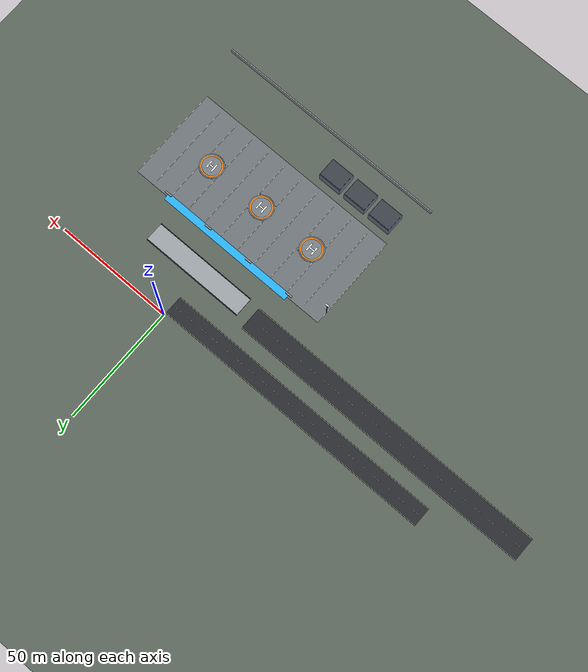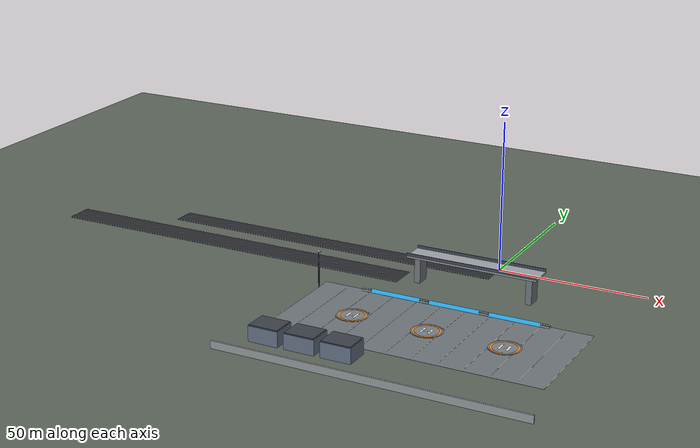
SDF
<sdf version="1.9">
 <world name="autonomous_city">
  <model name="ground">
   <static>true</static>
   <link name="link">
    <collision name="collision">
     <geometry><plane><normal>0 0 1</normal><size>600 600</size></plane></geometry>
     <surface><friction><ode><mu>100</mu><mu2>50</mu2></ode></friction></surface>
    </collision>
    <visual name="visual">
     <geometry><plane><normal>0 0 1</normal><size>600 600</size></plane></geometry>
     <material>
      <ambient>0.36 0.40 0.36 1</ambient>
      <diffuse>0.36 0.40 0.36 1</diffuse>
      <specular>0.15 0.15 0.15 1</specular>
     </material>
    </visual>
   </link>
  </model>
  <model name="ops_apron">
   <static>true</static>
   <pose>0 -55 0 0 0 0.0</pose>
   <link name="link">
    <visual name="slab">
     <pose>0 0 0.015 0 0 0</pose>
     <geometry><box><size>90.000 40.000 0.030</size></box></geometry>
     <material>
      <ambient>0.44 0.46 0.48 1</ambient>
      <diffuse>0.44 0.46 0.48 1</diffuse>
      <specular>0.15 0.15 0.15 1</specular>
     </material>
    </visual>
    <visual name="bay0">
     <pose>-45.00 0 0.035 0 0 0</pose>
     <geometry><box><size>0.200 36.000 0.010</size></box></geometry>
     <material>
      <ambient>0.95 0.95 0.90 1</ambient>
      <diffuse>0.95 0.95 0.90 1</diffuse>
      <specular>0.15 0.15 0.15 1</specular>
     </material>
    </visual>
    <visual name="bay1">
     <pose>-36.82 0 0.035 0 0 0</pose>
     <geometry><box><size>0.200 36.000 0.010</size></box></geometry>
     <material>
      <ambient>0.95 0.95 0.90 1</ambient>
      <diffuse>0.95 0.95 0.90 1</diffuse>
      <specular>0.15 0.15 0.15 1</specular>
     </material>
    </visual>
    <visual name="bay2">
     <pose>-28.64 0 0.035 0 0 0</pose>
     <geometry><box><size>0.200 36.000 0.010</size></box></geometry>
     <material>
      <ambient>0.95 0.95 0.90 1</ambient>
      <diffuse>0.95 0.95 0.90 1</diffuse>
      <specular>0.15 0.15 0.15 1</specular>
     </material>
    </visual>
    <visual name="bay3">
     <pose>-20.45 0 0.035 0 0 0</pose>
     <geometry><box><size>0.200 36.000 0.010</size></box></geometry>
     <material>
      <ambient>0.95 0.95 0.90 1</ambient>
      <diffuse>0.95 0.95 0.90 1</diffuse>
      <specular>0.15 0.15 0.15 1</specular>
     </material>
    </visual>
    <visual name="bay4">
     <pose>-12.27 0 0.035 0 0 0</pose>
     <geometry><box><size>0.200 36.000 0.010</size></box></geometry>
     <material>
      <ambient>0.95 0.95 0.90 1</ambient>
      <diffuse>0.95 0.95 0.90 1</diffuse>
      <specular>0.15 0.15 0.15 1</specular>
     </material>
    </visual>
    <visual name="bay5">
     <pose>-4.09 0 0.035 0 0 0</pose>
     <geometry><box><size>0.200 36.000 0.010</size></box></geometry>
     <material>
      <ambient>0.95 0.95 0.90 1</ambient>
      <diffuse>0.95 0.95 0.90 1</diffuse>
      <specular>0.15 0.15 0.15 1</specular>
     </material>
    </visual>
    <visual name="bay6">
     <pose>4.09 0 0.035 0 0 0</pose>
     <geometry><box><size>0.200 36.000 0.010</size></box></geometry>
     <material>
      <ambient>0.95 0.95 0.90 1</ambient>
      <diffuse>0.95 0.95 0.90 1</diffuse>
      <specular>0.15 0.15 0.15 1</specular>
     </material>
    </visual>
    <visual name="bay7">
     <pose>12.27 0 0.035 0 0 0</pose>
     <geometry><box><size>0.200 36.000 0.010</size></box></geometry>
     <material>
      <ambient>0.95 0.95 0.90 1</ambient>
      <diffuse>0.95 0.95 0.90 1</diffuse>
      <specular>0.15 0.15 0.15 1</specular>
     </material>
    </visual>
    <visual name="bay8">
     <pose>20.45 0 0.035 0 0 0</pose>
     <geometry><box><size>0.200 36.000 0.010</size></box></geometry>
     <material>
      <ambient>0.95 0.95 0.90 1</ambient>
      <diffuse>0.95 0.95 0.90 1</diffuse>
      <specular>0.15 0.15 0.15 1</specular>
     </material>
    </visual>
    <visual name="bay9">
     <pose>28.64 0 0.035 0 0 0</pose>
     <geometry><box><size>0.200 36.000 0.010</size></box></geometry>
     <material>
      <ambient>0.95 0.95 0.90 1</ambient>
      <diffuse>0.95 0.95 0.90 1</diffuse>
      <specular>0.15 0.15 0.15 1</specular>
     </material>
    </visual>
    <visual name="bay10">
     <pose>36.82 0 0.035 0 0 0</pose>
     <geometry><box><size>0.200 36.000 0.010</size></box></geometry>
     <material>
      <ambient>0.95 0.95 0.90 1</ambient>
      <diffuse>0.95 0.95 0.90 1</diffuse>
      <specular>0.15 0.15 0.15 1</specular>
     </material>
    </visual>
    <visual name="bay11">
     <pose>45.00 0 0.035 0 0 0</pose>
     <geometry><box><size>0.200 36.000 0.010</size></box></geometry>
     <material>
      <ambient>0.95 0.95 0.90 1</ambient>
      <diffuse>0.95 0.95 0.90 1</diffuse>
      <specular>0.15 0.15 0.15 1</specular>
     </material>
    </visual>
   </link>
  </model>
  <model name="pad_alpha">
   <static>true</static>
   <pose>-25 -55 0 0 0 0</pose>
   <link name="link">
    <visual name="pad">
     <pose>0 0 0.06 0 0 0</pose>
     <geometry><cylinder><radius>5.000</radius><length>0.120</length></cylinder></geometry>
     <material>
      <ambient>0.48 0.50 0.53 1</ambient>
      <diffuse>0.48 0.50 0.53 1</diffuse>
      <specular>0.15 0.15 0.15 1</specular>
     </material>
    </visual>
    <collision name="pad_c">
     <pose>0 0 0.06 0 0 0</pose>
     <geometry><cylinder><radius>5.000</radius><length>0.120</length></cylinder></geometry>
    </collision>
    <visual name="ring">
     <pose>0 0 0.13 0 0 0</pose>
     <geometry><cylinder><radius>4.500</radius><length>0.020</length></cylinder></geometry>
     <material>
      <ambient>0.98 0.55 0.10 1</ambient>
      <diffuse>0.98 0.55 0.10 1</diffuse>
      <specular>0.15 0.15 0.15 1</specular>
     </material>
    </visual>
    <visual name="inner">
     <pose>0 0 0.135 0 0 0</pose>
     <geometry><cylinder><radius>3.900</radius><length>0.030</length></cylinder></geometry>
     <material>
      <ambient>0.48 0.50 0.53 1</ambient>
      <diffuse>0.48 0.50 0.53 1</diffuse>
      <specular>0.15 0.15 0.15 1</specular>
     </material>
    </visual>
    <visual name="h1">
     <pose>-1.25 0 0.15 0 0 0</pose>
     <geometry><box><size>0.600 3.500 0.020</size></box></geometry>
     <material>
      <ambient>0.95 0.95 0.90 1</ambient>
      <diffuse>0.95 0.95 0.90 1</diffuse>
      <specular>0.15 0.15 0.15 1</specular>
     </material>
    </visual>
    <visual name="h2">
     <pose>1.25 0 0.15 0 0 0</pose>
     <geometry><box><size>0.600 3.500 0.020</size></box></geometry>
     <material>
      <ambient>0.95 0.95 0.90 1</ambient>
      <diffuse>0.95 0.95 0.90 1</diffuse>
      <specular>0.15 0.15 0.15 1</specular>
     </material>
    </visual>
    <visual name="h3">
     <pose>0 0 0.15 0 0 0</pose>
     <geometry><box><size>2.500 0.600 0.020</size></box></geometry>
     <material>
      <ambient>0.95 0.95 0.90 1</ambient>
      <diffuse>0.95 0.95 0.90 1</diffuse>
      <specular>0.15 0.15 0.15 1</specular>
     </material>
    </visual>
    <visual name="lamp0">
     <pose>3.71 3.71 0.15 0 0 0</pose>
     <geometry><cylinder><radius>0.120</radius><length>0.300</length></cylinder></geometry>
     <material>
      <ambient>0.16 0.70 0.96 1</ambient>
      <diffuse>0.16 0.70 0.96 1</diffuse>
      <specular>0.15 0.15 0.15 1</specular>
      <emissive>0.1 0.4 0.6 1</emissive>
     </material>
    </visual>
    <collision name="lamp0_c">
     <pose>3.71 3.71 0.15 0 0 0</pose>
     <geometry><cylinder><radius>0.120</radius><length>0.300</length></cylinder></geometry>
    </collision>
    <visual name="lamp1">
     <pose>-3.71 3.71 0.15 0 0 0</pose>
     <geometry><cylinder><radius>0.120</radius><length>0.300</length></cylinder></geometry>
     <material>
      <ambient>0.16 0.70 0.96 1</ambient>
      <diffuse>0.16 0.70 0.96 1</diffuse>
      <specular>0.15 0.15 0.15 1</specular>
      <emissive>0.1 0.4 0.6 1</emissive>
     </material>
    </visual>
    <collision name="lamp1_c">
     <pose>-3.71 3.71 0.15 0 0 0</pose>
     <geometry><cylinder><radius>0.120</radius><length>0.300</length></cylinder></geometry>
    </collision>
    <visual name="lamp2">
     <pose>-3.71 -3.71 0.15 0 0 0</pose>
     <geometry><cylinder><radius>0.120</radius><length>0.300</length></cylinder></geometry>
     <material>
      <ambient>0.16 0.70 0.96 1</ambient>
      <diffuse>0.16 0.70 0.96 1</diffuse>
      <specular>0.15 0.15 0.15 1</specular>
      <emissive>0.1 0.4 0.6 1</emissive>
     </material>
    </visual>
    <collision name="lamp2_c">
     <pose>-3.71 -3.71 0.15 0 0 0</pose>
     <geometry><cylinder><radius>0.120</radius><length>0.300</length></cylinder></geometry>
    </collision>
    <visual name="lamp3">
     <pose>3.71 -3.71 0.15 0 0 0</pose>
     <geometry><cylinder><radius>0.120</radius><length>0.300</length></cylinder></geometry>
     <material>
      <ambient>0.16 0.70 0.96 1</ambient>
      <diffuse>0.16 0.70 0.96 1</diffuse>
      <specular>0.15 0.15 0.15 1</specular>
      <emissive>0.1 0.4 0.6 1</emissive>
     </material>
    </visual>
    <collision name="lamp3_c">
     <pose>3.71 -3.71 0.15 0 0 0</pose>
     <geometry><cylinder><radius>0.120</radius><length>0.300</length></cylinder></geometry>
    </collision>
   </link>
  </model>
  <model name="pad_bravo">
   <static>true</static>
   <pose>0 -55 0 0 0 0</pose>
   <link name="link">
    <visual name="pad">
     <pose>0 0 0.06 0 0 0</pose>
     <geometry><cylinder><radius>5.000</radius><length>0.120</length></cylinder></geometry>
     <material>
      <ambient>0.48 0.50 0.53 1</ambient>
      <diffuse>0.48 0.50 0.53 1</diffuse>
      <specular>0.15 0.15 0.15 1</specular>
     </material>
    </visual>
    <collision name="pad_c">
     <pose>0 0 0.06 0 0 0</pose>
     <geometry><cylinder><radius>5.000</radius><length>0.120</length></cylinder></geometry>
    </collision>
    <visual name="ring">
     <pose>0 0 0.13 0 0 0</pose>
     <geometry><cylinder><radius>4.500</radius><length>0.020</length></cylinder></geometry>
     <material>
      <ambient>0.98 0.55 0.10 1</ambient>
      <diffuse>0.98 0.55 0.10 1</diffuse>
      <specular>0.15 0.15 0.15 1</specular>
     </material>
    </visual>
    <visual name="inner">
     <pose>0 0 0.135 0 0 0</pose>
     <geometry><cylinder><radius>3.900</radius><length>0.030</length></cylinder></geometry>
     <material>
      <ambient>0.48 0.50 0.53 1</ambient>
      <diffuse>0.48 0.50 0.53 1</diffuse>
      <specular>0.15 0.15 0.15 1</specular>
     </material>
    </visual>
    <visual name="h1">
     <pose>-1.25 0 0.15 0 0 0</pose>
     <geometry><box><size>0.600 3.500 0.020</size></box></geometry>
     <material>
      <ambient>0.95 0.95 0.90 1</ambient>
      <diffuse>0.95 0.95 0.90 1</diffuse>
      <specular>0.15 0.15 0.15 1</specular>
     </material>
    </visual>
    <visual name="h2">
     <pose>1.25 0 0.15 0 0 0</pose>
     <geometry><box><size>0.600 3.500 0.020</size></box></geometry>
     <material>
      <ambient>0.95 0.95 0.90 1</ambient>
      <diffuse>0.95 0.95 0.90 1</diffuse>
      <specular>0.15 0.15 0.15 1</specular>
     </material>
    </visual>
    <visual name="h3">
     <pose>0 0 0.15 0 0 0</pose>
     <geometry><box><size>2.500 0.600 0.020</size></box></geometry>
     <material>
      <ambient>0.95 0.95 0.90 1</ambient>
      <diffuse>0.95 0.95 0.90 1</diffuse>
      <specular>0.15 0.15 0.15 1</specular>
     </material>
    </visual>
    <visual name="lamp0">
     <pose>3.71 3.71 0.15 0 0 0</pose>
     <geometry><cylinder><radius>0.120</radius><length>0.300</length></cylinder></geometry>
     <material>
      <ambient>0.16 0.70 0.96 1</ambient>
      <diffuse>0.16 0.70 0.96 1</diffuse>
      <specular>0.15 0.15 0.15 1</specular>
      <emissive>0.1 0.4 0.6 1</emissive>
     </material>
    </visual>
    <collision name="lamp0_c">
     <pose>3.71 3.71 0.15 0 0 0</pose>
     <geometry><cylinder><radius>0.120</radius><length>0.300</length></cylinder></geometry>
    </collision>
    <visual name="lamp1">
     <pose>-3.71 3.71 0.15 0 0 0</pose>
     <geometry><cylinder><radius>0.120</radius><length>0.300</length></cylinder></geometry>
     <material>
      <ambient>0.16 0.70 0.96 1</ambient>
      <diffuse>0.16 0.70 0.96 1</diffuse>
      <specular>0.15 0.15 0.15 1</specular>
      <emissive>0.1 0.4 0.6 1</emissive>
     </material>
    </visual>
    <collision name="lamp1_c">
     <pose>-3.71 3.71 0.15 0 0 0</pose>
     <geometry><cylinder><radius>0.120</radius><length>0.300</length></cylinder></geometry>
    </collision>
    <visual name="lamp2">
     <pose>-3.71 -3.71 0.15 0 0 0</pose>
     <geometry><cylinder><radius>0.120</radius><length>0.300</length></cylinder></geometry>
     <material>
      <ambient>0.16 0.70 0.96 1</ambient>
      <diffuse>0.16 0.70 0.96 1</diffuse>
      <specular>0.15 0.15 0.15 1</specular>
      <emissive>0.1 0.4 0.6 1</emissive>
     </material>
    </visual>
    <collision name="lamp2_c">
     <pose>-3.71 -3.71 0.15 0 0 0</pose>
     <geometry><cylinder><radius>0.120</radius><length>0.300</length></cylinder></geometry>
    </collision>
    <visual name="lamp3">
     <pose>3.71 -3.71 0.15 0 0 0</pose>
     <geometry><cylinder><radius>0.120</radius><length>0.300</length></cylinder></geometry>
     <material>
      <ambient>0.16 0.70 0.96 1</ambient>
      <diffuse>0.16 0.70 0.96 1</diffuse>
      <specular>0.15 0.15 0.15 1</specular>
      <emissive>0.1 0.4 0.6 1</emissive>
     </material>
    </visual>
    <collision name="lamp3_c">
     <pose>3.71 -3.71 0.15 0 0 0</pose>
     <geometry><cylinder><radius>0.120</radius><length>0.300</length></cylinder></geometry>
    </collision>
   </link>
  </model>
  <model name="pad_charlie">
   <static>true</static>
   <pose>25 -55 0 0 0 0</pose>
   <link name="link">
    <visual name="pad">
     <pose>0 0 0.06 0 0 0</pose>
     <geometry><cylinder><radius>5.000</radius><length>0.120</length></cylinder></geometry>
     <material>
      <ambient>0.48 0.50 0.53 1</ambient>
      <diffuse>0.48 0.50 0.53 1</diffuse>
      <specular>0.15 0.15 0.15 1</specular>
     </material>
    </visual>
    <collision name="pad_c">
     <pose>0 0 0.06 0 0 0</pose>
     <geometry><cylinder><radius>5.000</radius><length>0.120</length></cylinder></geometry>
    </collision>
    <visual name="ring">
     <pose>0 0 0.13 0 0 0</pose>
     <geometry><cylinder><radius>4.500</radius><length>0.020</length></cylinder></geometry>
     <material>
      <ambient>0.98 0.55 0.10 1</ambient>
      <diffuse>0.98 0.55 0.10 1</diffuse>
      <specular>0.15 0.15 0.15 1</specular>
     </material>
    </visual>
    <visual name="inner">
     <pose>0 0 0.135 0 0 0</pose>
     <geometry><cylinder><radius>3.900</radius><length>0.030</length></cylinder></geometry>
     <material>
      <ambient>0.48 0.50 0.53 1</ambient>
      <diffuse>0.48 0.50 0.53 1</diffuse>
      <specular>0.15 0.15 0.15 1</specular>
     </material>
    </visual>
    <visual name="h1">
     <pose>-1.25 0 0.15 0 0 0</pose>
     <geometry><box><size>0.600 3.500 0.020</size></box></geometry>
     <material>
      <ambient>0.95 0.95 0.90 1</ambient>
      <diffuse>0.95 0.95 0.90 1</diffuse>
      <specular>0.15 0.15 0.15 1</specular>
     </material>
    </visual>
    <visual name="h2">
     <pose>1.25 0 0.15 0 0 0</pose>
     <geometry><box><size>0.600 3.500 0.020</size></box></geometry>
     <material>
      <ambient>0.95 0.95 0.90 1</ambient>
      <diffuse>0.95 0.95 0.90 1</diffuse>
      <specular>0.15 0.15 0.15 1</specular>
     </material>
    </visual>
    <visual name="h3">
     <pose>0 0 0.15 0 0 0</pose>
     <geometry><box><size>2.500 0.600 0.020</size></box></geometry>
     <material>
      <ambient>0.95 0.95 0.90 1</ambient>
      <diffuse>0.95 0.95 0.90 1</diffuse>
      <specular>0.15 0.15 0.15 1</specular>
     </material>
    </visual>
    <visual name="lamp0">
     <pose>3.71 3.71 0.15 0 0 0</pose>
     <geometry><cylinder><radius>0.120</radius><length>0.300</length></cylinder></geometry>
     <material>
      <ambient>0.16 0.70 0.96 1</ambient>
      <diffuse>0.16 0.70 0.96 1</diffuse>
      <specular>0.15 0.15 0.15 1</specular>
      <emissive>0.1 0.4 0.6 1</emissive>
     </material>
    </visual>
    <collision name="lamp0_c">
     <pose>3.71 3.71 0.15 0 0 0</pose>
     <geometry><cylinder><radius>0.120</radius><length>0.300</length></cylinder></geometry>
    </collision>
    <visual name="lamp1">
     <pose>-3.71 3.71 0.15 0 0 0</pose>
     <geometry><cylinder><radius>0.120</radius><length>0.300</length></cylinder></geometry>
     <material>
      <ambient>0.16 0.70 0.96 1</ambient>
      <diffuse>0.16 0.70 0.96 1</diffuse>
      <specular>0.15 0.15 0.15 1</specular>
      <emissive>0.1 0.4 0.6 1</emissive>
     </material>
    </visual>
    <collision name="lamp1_c">
     <pose>-3.71 3.71 0.15 0 0 0</pose>
     <geometry><cylinder><radius>0.120</radius><length>0.300</length></cylinder></geometry>
    </collision>
    <visual name="lamp2">
     <pose>-3.71 -3.71 0.15 0 0 0</pose>
     <geometry><cylinder><radius>0.120</radius><length>0.300</length></cylinder></geometry>
     <material>
      <ambient>0.16 0.70 0.96 1</ambient>
      <diffuse>0.16 0.70 0.96 1</diffuse>
      <specular>0.15 0.15 0.15 1</specular>
      <emissive>0.1 0.4 0.6 1</emissive>
     </material>
    </visual>
    <collision name="lamp2_c">
     <pose>-3.71 -3.71 0.15 0 0 0</pose>
     <geometry><cylinder><radius>0.120</radius><length>0.300</length></cylinder></geometry>
    </collision>
    <visual name="lamp3">
     <pose>3.71 -3.71 0.15 0 0 0</pose>
     <geometry><cylinder><radius>0.120</radius><length>0.300</length></cylinder></geometry>
     <material>
      <ambient>0.16 0.70 0.96 1</ambient>
      <diffuse>0.16 0.70 0.96 1</diffuse>
      <specular>0.15 0.15 0.15 1</specular>
      <emissive>0.1 0.4 0.6 1</emissive>
     </material>
    </visual>
    <collision name="lamp3_c">
     <pose>3.71 -3.71 0.15 0 0 0</pose>
     <geometry><cylinder><radius>0.120</radius><length>0.300</length></cylinder></geometry>
    </collision>
   </link>
  </model>
  <model name="service_bay_01">
   <static>true</static>
   <pose>-38 -82 0 0 0 0.0</pose>
   <link name="link">
    <visual name="core">
     <pose>0 0 2.5 0 0 0</pose>
     <geometry><box><size>10.000 8.000 5.000</size></box></geometry>
     <material>
      <ambient>0.42 0.48 0.56 1</ambient>
      <diffuse>0.42 0.48 0.56 1</diffuse>
      <specular>0.15 0.15 0.15 1</specular>
     </material>
    </visual>
    <collision name="core_c">
     <pose>0 0 2.5 0 0 0</pose>
     <geometry><box><size>10.000 8.000 5.000</size></box></geometry>
    </collision>
    <visual name="roof">
     <pose>0 0 5.15 0 0 0</pose>
     <geometry><box><size>9.600 7.600 0.300</size></box></geometry>
     <material>
      <ambient>0.24 0.26 0.29 1</ambient>
      <diffuse>0.24 0.26 0.29 1</diffuse>
      <specular>0.15 0.15 0.15 1</specular>
     </material>
    </visual>
    <collision name="roof_c">
     <pose>0 0 5.15 0 0 0</pose>
     <geometry><box><size>9.600 7.600 0.300</size></box></geometry>
    </collision>
   </link>
  </model>
  <model name="service_bay_02">
   <static>true</static>
   <pose>-26 -82 0 0 0 0.0</pose>
   <link name="link">
    <visual name="core">
     <pose>0 0 2.5 0 0 0</pose>
     <geometry><box><size>10.000 8.000 5.000</size></box></geometry>
     <material>
      <ambient>0.42 0.48 0.56 1</ambient>
      <diffuse>0.42 0.48 0.56 1</diffuse>
      <specular>0.15 0.15 0.15 1</specular>
     </material>
    </visual>
    <collision name="core_c">
     <pose>0 0 2.5 0 0 0</pose>
     <geometry><box><size>10.000 8.000 5.000</size></box></geometry>
    </collision>
    <visual name="roof">
     <pose>0 0 5.15 0 0 0</pose>
     <geometry><box><size>9.600 7.600 0.300</size></box></geometry>
     <material>
      <ambient>0.24 0.26 0.29 1</ambient>
      <diffuse>0.24 0.26 0.29 1</diffuse>
      <specular>0.15 0.15 0.15 1</specular>
     </material>
    </visual>
    <collision name="roof_c">
     <pose>0 0 5.15 0 0 0</pose>
     <geometry><box><size>9.600 7.600 0.300</size></box></geometry>
    </collision>
   </link>
  </model>
  <model name="service_bay_03">
   <static>true</static>
   <pose>-14 -82 0 0 0 0.0</pose>
   <link name="link">
    <visual name="core">
     <pose>0 0 2.5 0 0 0</pose>
     <geometry><box><size>10.000 8.000 5.000</size></box></geometry>
     <material>
      <ambient>0.42 0.48 0.56 1</ambient>
      <diffuse>0.42 0.48 0.56 1</diffuse>
      <specular>0.15 0.15 0.15 1</specular>
     </material>
    </visual>
    <collision name="core_c">
     <pose>0 0 2.5 0 0 0</pose>
     <geometry><box><size>10.000 8.000 5.000</size></box></geometry>
    </collision>
    <visual name="roof">
     <pose>0 0 5.15 0 0 0</pose>
     <geometry><box><size>9.600 7.600 0.300</size></box></geometry>
     <material>
      <ambient>0.24 0.26 0.29 1</ambient>
      <diffuse>0.24 0.26 0.29 1</diffuse>
      <specular>0.15 0.15 0.15 1</specular>
     </material>
    </visual>
    <collision name="roof_c">
     <pose>0 0 5.15 0 0 0</pose>
     <geometry><box><size>9.600 7.600 0.300</size></box></geometry>
    </collision>
   </link>
  </model>
  <model name="launch_zone">
   <static>true</static>
   <pose>0 -35 0 0 0 0.0</pose>
   <link name="link">
    <visual name="mark">
     <pose>0 0 0.05 0 0 0</pose>
     <geometry><box><size>60.000 3.000 0.015</size></box></geometry>
     <material>
      <ambient>0.16 0.70 0.96 1</ambient>
      <diffuse>0.16 0.70 0.96 1</diffuse>
      <specular>0.15 0.15 0.15 1</specular>
     </material>
    </visual>
   </link>
  </model>
  <model name="ops_mast_01">
   <static>true</static>
   <pose>-45 -40 0 0 0 0</pose>
   <link name="link">
    <visual name="mast">
     <pose>0 0 6.0 0 0 0</pose>
     <geometry><cylinder><radius>0.180</radius><length>12.000</length></cylinder></geometry>
     <material>
      <ambient>0.26 0.30 0.36 1</ambient>
      <diffuse>0.26 0.30 0.36 1</diffuse>
      <specular>0.15 0.15 0.15 1</specular>
     </material>
    </visual>
    <collision name="mast_c">
     <pose>0 0 6.0 0 0 0</pose>
     <geometry><cylinder><radius>0.180</radius><length>12.000</length></cylinder></geometry>
    </collision>
    <visual name="head">
     <pose>0 0 12.15 0 0 0</pose>
     <geometry><box><size>1.600 0.600 0.300</size></box></geometry>
     <material>
      <ambient>0.92 0.93 0.94 1</ambient>
      <diffuse>0.92 0.93 0.94 1</diffuse>
      <specular>0.15 0.15 0.15 1</specular>
      <emissive>0.5 0.5 0.45 1</emissive>
     </material>
    </visual>
   </link>
  </model>
  <model name="ops_wall_s">
   <static>true</static>
   <pose>0 -95 0 0 0 0.0</pose>
   <link name="link">
    <visual name="wall">
     <pose>0 0 1.25 0 0 0</pose>
     <geometry><box><size>100.000 0.500 2.500</size></box></geometry>
     <material>
      <ambient>0.62 0.64 0.66 1</ambient>
      <diffuse>0.62 0.64 0.66 1</diffuse>
      <specular>0.15 0.15 0.15 1</specular>
     </material>
    </visual>
    <collision name="wall_c">
     <pose>0 0 1.25 0 0 0</pose>
     <geometry><box><size>100.000 0.500 2.500</size></box></geometry>
    </collision>
   </link>
  </model>
  <model name="ops_barrier_01">
   <static>true</static>
   <pose>-30 -36 0 0 0 0.0</pose>
   <link name="link">
    <visual name="base">
     <pose>0 0 0.45 0 0 0</pose>
     <geometry><box><size>3.000 0.600 0.900</size></box></geometry>
     <material>
      <ambient>0.62 0.64 0.66 1</ambient>
      <diffuse>0.62 0.64 0.66 1</diffuse>
      <specular>0.15 0.15 0.15 1</specular>
     </material>
    </visual>
    <collision name="base_c">
     <pose>0 0 0.45 0 0 0</pose>
     <geometry><box><size>3.000 0.600 0.900</size></box></geometry>
    </collision>
    <visual name="stripe">
     <pose>0 0 0.7 0 0 0</pose>
     <geometry><box><size>3.020 0.620 0.150</size></box></geometry>
     <material>
      <ambient>0.98 0.55 0.10 1</ambient>
      <diffuse>0.98 0.55 0.10 1</diffuse>
      <specular>0.15 0.15 0.15 1</specular>
     </material>
    </visual>
   </link>
  </model>
  <model name="ops_barrier_02">
   <static>true</static>
   <pose>-10 -36 0 0 0 0.0</pose>
   <link name="link">
    <visual name="base">
     <pose>0 0 0.45 0 0 0</pose>
     <geometry><box><size>3.000 0.600 0.900</size></box></geometry>
     <material>
      <ambient>0.62 0.64 0.66 1</ambient>
      <diffuse>0.62 0.64 0.66 1</diffuse>
      <specular>0.15 0.15 0.15 1</specular>
     </material>
    </visual>
    <collision name="base_c">
     <pose>0 0 0.45 0 0 0</pose>
     <geometry><box><size>3.000 0.600 0.900</size></box></geometry>
    </collision>
    <visual name="stripe">
     <pose>0 0 0.7 0 0 0</pose>
     <geometry><box><size>3.020 0.620 0.150</size></box></geometry>
     <material>
      <ambient>0.98 0.55 0.10 1</ambient>
      <diffuse>0.98 0.55 0.10 1</diffuse>
      <specular>0.15 0.15 0.15 1</specular>
     </material>
    </visual>
   </link>
  </model>
  <model name="ops_barrier_03">
   <static>true</static>
   <pose>10 -36 0 0 0 0.0</pose>
   <link name="link">
    <visual name="base">
     <pose>0 0 0.45 0 0 0</pose>
     <geometry><box><size>3.000 0.600 0.900</size></box></geometry>
     <material>
      <ambient>0.62 0.64 0.66 1</ambient>
      <diffuse>0.62 0.64 0.66 1</diffuse>
      <specular>0.15 0.15 0.15 1</specular>
     </material>
    </visual>
    <collision name="base_c">
     <pose>0 0 0.45 0 0 0</pose>
     <geometry><box><size>3.000 0.600 0.900</size></box></geometry>
    </collision>
    <visual name="stripe">
     <pose>0 0 0.7 0 0 0</pose>
     <geometry><box><size>3.020 0.620 0.150</size></box></geometry>
     <material>
      <ambient>0.98 0.55 0.10 1</ambient>
      <diffuse>0.98 0.55 0.10 1</diffuse>
      <specular>0.15 0.15 0.15 1</specular>
     </material>
    </visual>
   </link>
  </model>
  <model name="ops_barrier_04">
   <static>true</static>
   <pose>30 -36 0 0 0 0.0</pose>
   <link name="link">
    <visual name="base">
     <pose>0 0 0.45 0 0 0</pose>
     <geometry><box><size>3.000 0.600 0.900</size></box></geometry>
     <material>
      <ambient>0.62 0.64 0.66 1</ambient>
      <diffuse>0.62 0.64 0.66 1</diffuse>
      <specular>0.15 0.15 0.15 1</specular>
     </material>
    </visual>
    <collision name="base_c">
     <pose>0 0 0.45 0 0 0</pose>
     <geometry><box><size>3.000 0.600 0.900</size></box></geometry>
    </collision>
    <visual name="stripe">
     <pose>0 0 0.7 0 0 0</pose>
     <geometry><box><size>3.020 0.620 0.150</size></box></geometry>
     <material>
      <ambient>0.98 0.55 0.10 1</ambient>
      <diffuse>0.98 0.55 0.10 1</diffuse>
      <specular>0.15 0.15 0.15 1</specular>
     </material>
    </visual>
   </link>
  </model>
  <model name="industrial_road">
   <static>true</static>
   <pose>-60 -5 0 0 0 0.0</pose>
   <link name="link">
    <visual name="asphalt">
     <pose>0 0 0.02 0 0 0</pose>
     <geometry><box><size>120.000 8.000 0.040</size></box></geometry>
     <material>
      <ambient>0.16 0.17 0.19 1</ambient>
      <diffuse>0.16 0.17 0.19 1</diffuse>
      <specular>0.15 0.15 0.15 1</specular>
     </material>
    </visual>
    <visual name="dash0">
     <pose>-57.00 0 0.045 0 0 0</pose>
     <geometry><box><size>3.000 0.200 0.010</size></box></geometry>
     <material>
      <ambient>0.95 0.95 0.90 1</ambient>
      <diffuse>0.95 0.95 0.90 1</diffuse>
      <specular>0.15 0.15 0.15 1</specular>
     </material>
    </visual>
    <visual name="dash1">
     <pose>-51.00 0 0.045 0 0 0</pose>
     <geometry><box><size>3.000 0.200 0.010</size></box></geometry>
     <material>
      <ambient>0.95 0.95 0.90 1</ambient>
      <diffuse>0.95 0.95 0.90 1</diffuse>
      <specular>0.15 0.15 0.15 1</specular>
     </material>
    </visual>
    <visual name="dash2">
     <pose>-45.00 0 0.045 0 0 0</pose>
     <geometry><box><size>3.000 0.200 0.010</size></box></geometry>
     <material>
      <ambient>0.95 0.95 0.90 1</ambient>
      <diffuse>0.95 0.95 0.90 1</diffuse>
      <specular>0.15 0.15 0.15 1</specular>
     </material>
    </visual>
    <visual name="dash3">
     <pose>-39.00 0 0.045 0 0 0</pose>
     <geometry><box><size>3.000 0.200 0.010</size></box></geometry>
     <material>
      <ambient>0.95 0.95 0.90 1</ambient>
      <diffuse>0.95 0.95 0.90 1</diffuse>
      <specular>0.15 0.15 0.15 1</specular>
     </material>
    </visual>
    <visual name="dash4">
     <pose>-33.00 0 0.045 0 0 0</pose>
     <geometry><box><size>3.000 0.200 0.010</size></box></geometry>
     <material>
      <ambient>0.95 0.95 0.90 1</ambient>
      <diffuse>0.95 0.95 0.90 1</diffuse>
      <specular>0.15 0.15 0.15 1</specular>
     </material>
    </visual>
    <visual name="dash5">
     <pose>-27.00 0 0.045 0 0 0</pose>
     <geometry><box><size>3.000 0.200 0.010</size></box></geometry>
     <material>
      <ambient>0.95 0.95 0.90 1</ambient>
      <diffuse>0.95 0.95 0.90 1</diffuse>
      <specular>0.15 0.15 0.15 1</specular>
     </material>
    </visual>
    <visual name="dash6">
     <pose>-21.00 0 0.045 0 0 0</pose>
     <geometry><box><size>3.000 0.200 0.010</size></box></geometry>
     <material>
      <ambient>0.95 0.95 0.90 1</ambient>
      <diffuse>0.95 0.95 0.90 1</diffuse>
      <specular>0.15 0.15 0.15 1</specular>
     </material>
    </visual>
    <visual name="dash7">
     <pose>-15.00 0 0.045 0 0 0</pose>
     <geometry><box><size>3.000 0.200 0.010</size></box></geometry>
     <material>
      <ambient>0.95 0.95 0.90 1</ambient>
      <diffuse>0.95 0.95 0.90 1</diffuse>
      <specular>0.15 0.15 0.15 1</specular>
     </material>
    </visual>
    <visual name="dash8">
     <pose>-9.00 0 0.045 0 0 0</pose>
     <geometry><box><size>3.000 0.200 0.010</size></box></geometry>
     <material>
      <ambient>0.95 0.95 0.90 1</ambient>
      <diffuse>0.95 0.95 0.90 1</diffuse>
      <specular>0.15 0.15 0.15 1</specular>
     </material>
    </visual>
    <visual name="dash9">
     <pose>-3.00 0 0.045 0 0 0</pose>
     <geometry><box><size>3.000 0.200 0.010</size></box></geometry>
     <material>
      <ambient>0.95 0.95 0.90 1</ambient>
      <diffuse>0.95 0.95 0.90 1</diffuse>
      <specular>0.15 0.15 0.15 1</specular>
     </material>
    </visual>
    <visual name="dash10">
     <pose>3.00 0 0.045 0 0 0</pose>
     <geometry><box><size>3.000 0.200 0.010</size></box></geometry>
     <material>
      <ambient>0.95 0.95 0.90 1</ambient>
      <diffuse>0.95 0.95 0.90 1</diffuse>
      <specular>0.15 0.15 0.15 1</specular>
     </material>
    </visual>
    <visual name="dash11">
     <pose>9.00 0 0.045 0 0 0</pose>
     <geometry><box><size>3.000 0.200 0.010</size></box></geometry>
     <material>
      <ambient>0.95 0.95 0.90 1</ambient>
      <diffuse>0.95 0.95 0.90 1</diffuse>
      <specular>0.15 0.15 0.15 1</specular>
     </material>
    </visual>
    <visual name="dash12">
     <pose>15.00 0 0.045 0 0 0</pose>
     <geometry><box><size>3.000 0.200 0.010</size></box></geometry>
     <material>
      <ambient>0.95 0.95 0.90 1</ambient>
      <diffuse>0.95 0.95 0.90 1</diffuse>
      <specular>0.15 0.15 0.15 1</specular>
     </material>
    </visual>
    <visual name="dash13">
     <pose>21.00 0 0.045 0 0 0</pose>
     <geometry><box><size>3.000 0.200 0.010</size></box></geometry>
     <material>
      <ambient>0.95 0.95 0.90 1</ambient>
      <diffuse>0.95 0.95 0.90 1</diffuse>
      <specular>0.15 0.15 0.15 1</specular>
     </material>
    </visual>
    <visual name="dash14">
     <pose>27.00 0 0.045 0 0 0</pose>
     <geometry><box><size>3.000 0.200 0.010</size></box></geometry>
     <material>
      <ambient>0.95 0.95 0.90 1</ambient>
      <diffuse>0.95 0.95 0.90 1</diffuse>
      <specular>0.15 0.15 0.15 1</specular>
     </material>
    </visual>
    <visual name="dash15">
     <pose>33.00 0 0.045 0 0 0</pose>
     <geometry><box><size>3.000 0.200 0.010</size></box></geometry>
     <material>
      <ambient>0.95 0.95 0.90 1</ambient>
      <diffuse>0.95 0.95 0.90 1</diffuse>
      <specular>0.15 0.15 0.15 1</specular>
     </material>
    </visual>
    <visual name="dash16">
     <pose>39.00 0 0.045 0 0 0</pose>
     <geometry><box><size>3.000 0.200 0.010</size></box></geometry>
     <material>
      <ambient>0.95 0.95 0.90 1</ambient>
      <diffuse>0.95 0.95 0.90 1</diffuse>
      <specular>0.15 0.15 0.15 1</specular>
     </material>
    </visual>
    <visual name="dash17">
     <pose>45.00 0 0.045 0 0 0</pose>
     <geometry><box><size>3.000 0.200 0.010</size></box></geometry>
     <material>
      <ambient>0.95 0.95 0.90 1</ambient>
      <diffuse>0.95 0.95 0.90 1</diffuse>
      <specular>0.15 0.15 0.15 1</specular>
     </material>
    </visual>
    <visual name="dash18">
     <pose>51.00 0 0.045 0 0 0</pose>
     <geometry><box><size>3.000 0.200 0.010</size></box></geometry>
     <material>
      <ambient>0.95 0.95 0.90 1</ambient>
      <diffuse>0.95 0.95 0.90 1</diffuse>
      <specular>0.15 0.15 0.15 1</specular>
     </material>
    </visual>
    <visual name="dash19">
     <pose>57.00 0 0.045 0 0 0</pose>
     <geometry><box><size>3.000 0.200 0.010</size></box></geometry>
     <material>
      <ambient>0.95 0.95 0.90 1</ambient>
      <diffuse>0.95 0.95 0.90 1</diffuse>
      <specular>0.15 0.15 0.15 1</specular>
     </material>
    </visual>
    <visual name="edge_l">
     <pose>0 3.80 0.045 0 0 0</pose>
     <geometry><box><size>120.000 0.250 0.010</size></box></geometry>
     <material>
      <ambient>0.95 0.95 0.90 1</ambient>
      <diffuse>0.95 0.95 0.90 1</diffuse>
      <specular>0.15 0.15 0.15 1</specular>
     </material>
    </visual>
    <visual name="edge_r">
     <pose>0 -3.80 0.045 0 0 0</pose>
     <geometry><box><size>120.000 0.250 0.010</size></box></geometry>
     <material>
      <ambient>0.95 0.95 0.90 1</ambient>
      <diffuse>0.95 0.95 0.90 1</diffuse>
      <specular>0.15 0.15 0.15 1</specular>
     </material>
    </visual>
   </link>
  </model>
  <model name="bridge_01">
   <static>true</static>
   <pose>0 -20 0 0 0 0.0</pose>
   <link name="link">
    <visual name="deck">
     <pose>0 0 9 0 0 0</pose>
     <geometry><box><size>44.000 8.000 0.600</size></box></geometry>
     <material>
      <ambient>0.62 0.64 0.66 1</ambient>
      <diffuse>0.62 0.64 0.66 1</diffuse>
      <specular>0.15 0.15 0.15 1</specular>
     </material>
    </visual>
    <collision name="deck_c">
     <pose>0 0 9 0 0 0</pose>
     <geometry><box><size>44.000 8.000 0.600</size></box></geometry>
    </collision>
    <visual name="rail_l">
     <pose>0 3.9 9.8 0 0 0</pose>
     <geometry><box><size>44.000 0.150 1.000</size></box></geometry>
     <material>
      <ambient>0.26 0.30 0.36 1</ambient>
      <diffuse>0.26 0.30 0.36 1</diffuse>
      <specular>0.15 0.15 0.15 1</specular>
     </material>
    </visual>
    <collision name="rail_l_c">
     <pose>0 3.9 9.8 0 0 0</pose>
     <geometry><box><size>44.000 0.150 1.000</size></box></geometry>
    </collision>
    <visual name="rail_r">
     <pose>0 -3.9 9.8 0 0 0</pose>
     <geometry><box><size>44.000 0.150 1.000</size></box></geometry>
     <material>
      <ambient>0.26 0.30 0.36 1</ambient>
      <diffuse>0.26 0.30 0.36 1</diffuse>
      <specular>0.15 0.15 0.15 1</specular>
     </material>
    </visual>
    <collision name="rail_r_c">
     <pose>0 -3.9 9.8 0 0 0</pose>
     <geometry><box><size>44.000 0.150 1.000</size></box></geometry>
    </collision>
    <visual name="pier0">
     <pose>-19.0 0 4.35 0 0 0</pose>
     <geometry><box><size>2.000 4.800 8.700</size></box></geometry>
     <material>
      <ambient>0.48 0.50 0.53 1</ambient>
      <diffuse>0.48 0.50 0.53 1</diffuse>
      <specular>0.15 0.15 0.15 1</specular>
     </material>
    </visual>
    <collision name="pier0_c">
     <pose>-19.0 0 4.35 0 0 0</pose>
     <geometry><box><size>2.000 4.800 8.700</size></box></geometry>
    </collision>
    <visual name="pier1">
     <pose>19.0 0 4.35 0 0 0</pose>
     <geometry><box><size>2.000 4.800 8.700</size></box></geometry>
     <material>
      <ambient>0.48 0.50 0.53 1</ambient>
      <diffuse>0.48 0.50 0.53 1</diffuse>
      <specular>0.15 0.15 0.15 1</specular>
     </material>
    </visual>
    <collision name="pier1_c">
     <pose>19.0 0 4.35 0 0 0</pose>
     <geometry><box><size>2.000 4.800 8.700</size></box></geometry>
    </collision>
   </link>
  </model>
  <model name="main_road_w">
   <static>true</static>
   <pose>-90 -20 0 0 0 0.0</pose>
   <link name="link">
    <visual name="asphalt">
     <pose>0 0 0.02 0 0 0</pose>
     <geometry><box><size>130.000 10.000 0.040</size></box></geometry>
     <material>
      <ambient>0.16 0.17 0.19 1</ambient>
      <diffuse>0.16 0.17 0.19 1</diffuse>
      <specular>0.15 0.15 0.15 1</specular>
     </material>
    </visual>
    <visual name="dash0">
     <pose>-62.00 0 0.045 0 0 0</pose>
     <geometry><box><size>3.000 0.200 0.010</size></box></geometry>
     <material>
      <ambient>0.95 0.95 0.90 1</ambient>
      <diffuse>0.95 0.95 0.90 1</diffuse>
      <specular>0.15 0.15 0.15 1</specular>
     </material>
    </visual>
    <visual name="dash1">
     <pose>-56.00 0 0.045 0 0 0</pose>
     <geometry><box><size>3.000 0.200 0.010</size></box></geometry>
     <material>
      <ambient>0.95 0.95 0.90 1</ambient>
      <diffuse>0.95 0.95 0.90 1</diffuse>
      <specular>0.15 0.15 0.15 1</specular>
     </material>
    </visual>
    <visual name="dash2">
     <pose>-50.00 0 0.045 0 0 0</pose>
     <geometry><box><size>3.000 0.200 0.010</size></box></geometry>
     <material>
      <ambient>0.95 0.95 0.90 1</ambient>
      <diffuse>0.95 0.95 0.90 1</diffuse>
      <specular>0.15 0.15 0.15 1</specular>
     </material>
    </visual>
    <visual name="dash3">
     <pose>-44.00 0 0.045 0 0 0</pose>
     <geometry><box><size>3.000 0.200 0.010</size></box></geometry>
     <material>
      <ambient>0.95 0.95 0.90 1</ambient>
      <diffuse>0.95 0.95 0.90 1</diffuse>
      <specular>0.15 0.15 0.15 1</specular>
     </material>
    </visual>
    <visual name="dash4">
     <pose>-38.00 0 0.045 0 0 0</pose>
     <geometry><box><size>3.000 0.200 0.010</size></box></geometry>
     <material>
      <ambient>0.95 0.95 0.90 1</ambient>
      <diffuse>0.95 0.95 0.90 1</diffuse>
      <specular>0.15 0.15 0.15 1</specular>
     </material>
    </visual>
    <visual name="dash5">
     <pose>-32.00 0 0.045 0 0 0</pose>
     <geometry><box><size>3.000 0.200 0.010</size></box></geometry>
     <material>
      <ambient>0.95 0.95 0.90 1</ambient>
      <diffuse>0.95 0.95 0.90 1</diffuse>
      <specular>0.15 0.15 0.15 1</specular>
     </material>
    </visual>
    <visual name="dash6">
     <pose>-26.00 0 0.045 0 0 0</pose>
     <geometry><box><size>3.000 0.200 0.010</size></box></geometry>
     <material>
      <ambient>0.95 0.95 0.90 1</ambient>
      <diffuse>0.95 0.95 0.90 1</diffuse>
      <specular>0.15 0.15 0.15 1</specular>
     </material>
    </visual>
    <visual name="dash7">
     <pose>-20.00 0 0.045 0 0 0</pose>
     <geometry><box><size>3.000 0.200 0.010</size></box></geometry>
     <material>
      <ambient>0.95 0.95 0.90 1</ambient>
      <diffuse>0.95 0.95 0.90 1</diffuse>
      <specular>0.15 0.15 0.15 1</specular>
     </material>
    </visual>
    <visual name="dash8">
     <pose>-14.00 0 0.045 0 0 0</pose>
     <geometry><box><size>3.000 0.200 0.010</size></box></geometry>
     <material>
      <ambient>0.95 0.95 0.90 1</ambient>
      <diffuse>0.95 0.95 0.90 1</diffuse>
      <specular>0.15 0.15 0.15 1</specular>
     </material>
    </visual>
    <visual name="dash9">
     <pose>-8.00 0 0.045 0 0 0</pose>
     <geometry><box><size>3.000 0.200 0.010</size></box></geometry>
     <material>
      <ambient>0.95 0.95 0.90 1</ambient>
      <diffuse>0.95 0.95 0.90 1</diffuse>
      <specular>0.15 0.15 0.15 1</specular>
     </material>
    </visual>
    <visual name="dash10">
     <pose>-2.00 0 0.045 0 0 0</pose>
     <geometry><box><size>3.000 0.200 0.010</size></box></geometry>
     <material>
      <ambient>0.95 0.95 0.90 1</ambient>
      <diffuse>0.95 0.95 0.90 1</diffuse>
      <specular>0.15 0.15 0.15 1</specular>
     </material>
    </visual>
    <visual name="dash11">
     <pose>4.00 0 0.045 0 0 0</pose>
     <geometry><box><size>3.000 0.200 0.010</size></box></geometry>
     <material>
      <ambient>0.95 0.95 0.90 1</ambient>
      <diffuse>0.95 0.95 0.90 1</diffuse>
      <specular>0.15 0.15 0.15 1</specular>
     </material>
    </visual>
    <visual name="dash12">
     <pose>10.00 0 0.045 0 0 0</pose>
     <geometry><box><size>3.000 0.200 0.010</size></box></geometry>
     <material>
      <ambient>0.95 0.95 0.90 1</ambient>
      <diffuse>0.95 0.95 0.90 1</diffuse>
      <specular>0.15 0.15 0.15 1</specular>
     </material>
    </visual>
    <visual name="dash13">
     <pose>16.00 0 0.045 0 0 0</pose>
     <geometry><box><size>3.000 0.200 0.010</size></box></geometry>
     <material>
      <ambient>0.95 0.95 0.90 1</ambient>
      <diffuse>0.95 0.95 0.90 1</diffuse>
      <specular>0.15 0.15 0.15 1</specular>
     </material>
    </visual>
    <visual name="dash14">
     <pose>22.00 0 0.045 0 0 0</pose>
     <geometry><box><size>3.000 0.200 0.010</size></box></geometry>
     <material>
      <ambient>0.95 0.95 0.90 1</ambient>
      <diffuse>0.95 0.95 0.90 1</diffuse>
      <specular>0.15 0.15 0.15 1</specular>
     </material>
    </visual>
    <visual name="dash15">
     <pose>28.00 0 0.045 0 0 0</pose>
     <geometry><box><size>3.000 0.200 0.010</size></box></geometry>
     <material>
      <ambient>0.95 0.95 0.90 1</ambient>
      <diffuse>0.95 0.95 0.90 1</diffuse>
      <specular>0.15 0.15 0.15 1</specular>
     </material>
    </visual>
    <visual name="dash16">
     <pose>34.00 0 0.045 0 0 0</pose>
     <geometry><box><size>3.000 0.200 0.010</size></box></geometry>
     <material>
      <ambient>0.95 0.95 0.90 1</ambient>
      <diffuse>0.95 0.95 0.90 1</diffuse>
      <specular>0.15 0.15 0.15 1</specular>
     </material>
    </visual>
    <visual name="dash17">
     <pose>40.00 0 0.045 0 0 0</pose>
     <geometry><box><size>3.000 0.200 0.010</size></box></geometry>
     <material>
      <ambient>0.95 0.95 0.90 1</ambient>
      <diffuse>0.95 0.95 0.90 1</diffuse>
      <specular>0.15 0.15 0.15 1</specular>
     </material>
    </visual>
    <visual name="dash18">
     <pose>46.00 0 0.045 0 0 0</pose>
     <geometry><box><size>3.000 0.200 0.010</size></box></geometry>
     <material>
      <ambient>0.95 0.95 0.90 1</ambient>
      <diffuse>0.95 0.95 0.90 1</diffuse>
      <specular>0.15 0.15 0.15 1</specular>
     </material>
    </visual>
    <visual name="dash19">
     <pose>52.00 0 0.045 0 0 0</pose>
     <geometry><box><size>3.000 0.200 0.010</size></box></geometry>
     <material>
      <ambient>0.95 0.95 0.90 1</ambient>
      <diffuse>0.95 0.95 0.90 1</diffuse>
      <specular>0.15 0.15 0.15 1</specular>
     </material>
    </visual>
    <visual name="dash20">
     <pose>58.00 0 0.045 0 0 0</pose>
     <geometry><box><size>3.000 0.200 0.010</size></box></geometry>
     <material>
      <ambient>0.95 0.95 0.90 1</ambient>
      <diffuse>0.95 0.95 0.90 1</diffuse>
      <specular>0.15 0.15 0.15 1</specular>
     </material>
    </visual>
    <visual name="edge_l">
     <pose>0 4.80 0.045 0 0 0</pose>
     <geometry><box><size>130.000 0.250 0.010</size></box></geometry>
     <material>
      <ambient>0.95 0.95 0.90 1</ambient>
      <diffuse>0.95 0.95 0.90 1</diffuse>
      <specular>0.15 0.15 0.15 1</specular>
     </material>
    </visual>
    <visual name="edge_r">
     <pose>0 -4.80 0.045 0 0 0</pose>
     <geometry><box><size>130.000 0.250 0.010</size></box></geometry>
     <material>
      <ambient>0.95 0.95 0.90 1</ambient>
      <diffuse>0.95 0.95 0.90 1</diffuse>
      <specular>0.15 0.15 0.15 1</specular>
     </material>
    </visual>
   </link>
  </model>
 </world>
</sdf>
